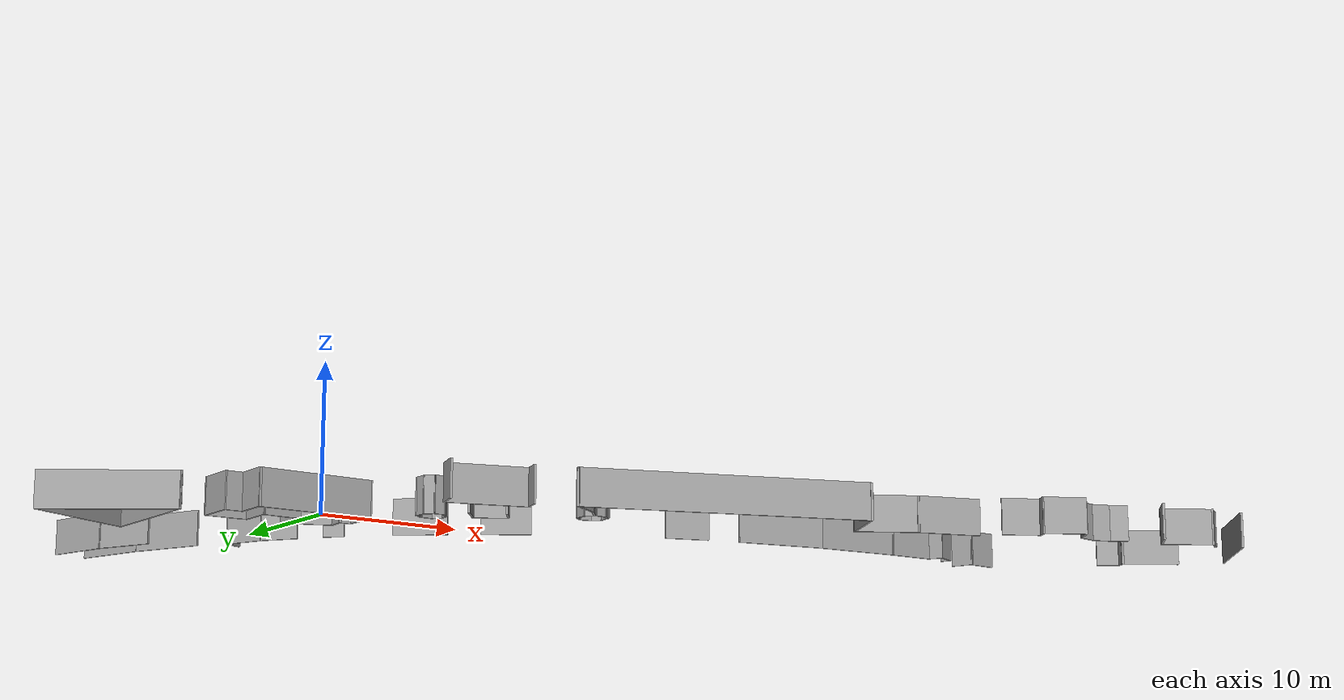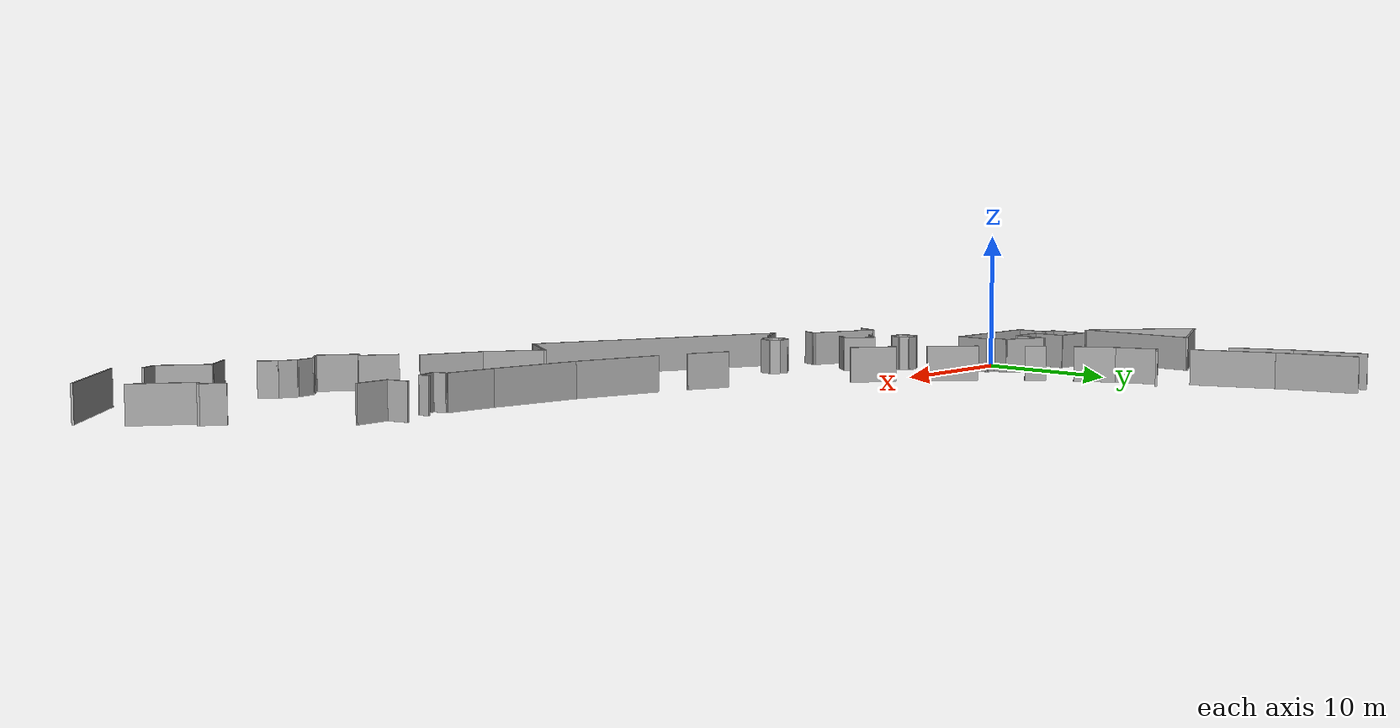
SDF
<?xml version='1.0'?>
<sdf version='1.6'>
  <model name='Area_A'>
    <pose frame=''>23.7273 0.310107 0 0 -0 0</pose>
    <link name='Wall_0'>
      <collision name='Wall_0_Collision'>
        <geometry>
          <box>
            <size>5 0.15 2.5</size>
          </box>
        </geometry>
        <pose frame=''>0 0 1.25 0 -0 0</pose>
      </collision>
      <visual name='Wall_0_Visual'>
        <pose frame=''>0 0 1.25 0 -0 0</pose>
        <geometry>
          <box>
            <size>5 0.15 2.5</size>
          </box>
        </geometry>
        <material>
          <script>
            <uri>file://media/materials/scripts/gazebo.material</uri>
            <name>Gazebo/Grey</name>
          </script>
          <ambient>1 1 1 1</ambient>
        </material>
        <meta>
          <layer>0</layer>
        </meta>
      </visual>
      <pose frame=''>-29.9191 23.954 0 0 -0 -1.309</pose>
    </link>
    <link name='Wall_1'>
      <collision name='Wall_1_Collision'>
        <geometry>
          <box>
            <size>4.48832 0.15 2.5</size>
          </box>
        </geometry>
        <pose frame=''>0 0 1.25 0 -0 0</pose>
      </collision>
      <visual name='Wall_1_Visual'>
        <pose frame=''>0 0 1.25 0 -0 0</pose>
        <geometry>
          <box>
            <size>4.48832 0.15 2.5</size>
          </box>
        </geometry>
        <material>
          <script>
            <uri>file://media/materials/scripts/gazebo.material</uri>
            <name>Gazebo/Grey</name>
          </script>
          <ambient>1 1 1 1</ambient>
        </material>
        <meta>
          <layer>0</layer>
        </meta>
      </visual>
      <pose frame=''>-28.4051 19.6319 0 0 -0 -1.14985</pose>
    </link>
    <link name='Wall_10'>
      <collision name='Wall_10_Collision'>
        <geometry>
          <box>
            <size>3.10013 0.15 2.5</size>
          </box>
        </geometry>
        <pose frame=''>0 0 1.25 0 -0 0</pose>
      </collision>
      <visual name='Wall_10_Visual'>
        <pose frame=''>0 0 1.25 0 -0 0</pose>
        <geometry>
          <box>
            <size>3.10013 0.15 2.5</size>
          </box>
        </geometry>
        <material>
          <script>
            <uri>file://media/materials/scripts/gazebo.material</uri>
            <name>Gazebo/Grey</name>
          </script>
          <ambient>1 1 1 1</ambient>
        </material>
        <meta>
          <layer>0</layer>
        </meta>
      </visual>
      <pose frame=''>-22.4883 13.095 0 0 -0 -1.1869</pose>
    </link>
    <link name='Wall_101'>
      <collision name='Wall_101_Collision'>
        <geometry>
          <box>
            <size>1.68972 0.15 2.5</size>
          </box>
        </geometry>
        <pose frame=''>0 0 1.25 0 -0 0</pose>
      </collision>
      <visual name='Wall_101_Visual'>
        <pose frame=''>0 0 1.25 0 -0 0</pose>
        <geometry>
          <box>
            <size>1.68972 0.15 2.5</size>
          </box>
        </geometry>
        <material>
          <script>
            <uri>file://media/materials/scripts/gazebo.material</uri>
            <name>Gazebo/Grey</name>
          </script>
          <ambient>1 1 1 1</ambient>
        </material>
        <meta>
          <layer>0</layer>
        </meta>
      </visual>
      <pose frame=''>-13.9412 -7.02001 0 0 -0 0.942545</pose>
    </link>
    <link name='Wall_102'>
      <collision name='Wall_102_Collision'>
        <geometry>
          <box>
            <size>2.41757 0.15 2.5</size>
          </box>
        </geometry>
        <pose frame=''>0 0 1.25 0 -0 0</pose>
      </collision>
      <visual name='Wall_102_Visual'>
        <pose frame=''>0 0 1.25 0 -0 0</pose>
        <geometry>
          <box>
            <size>2.41757 0.15 2.5</size>
          </box>
        </geometry>
        <material>
          <script>
            <uri>file://media/materials/scripts/gazebo.material</uri>
            <name>Gazebo/Grey</name>
          </script>
          <ambient>1 1 1 1</ambient>
        </material>
        <meta>
          <layer>0</layer>
        </meta>
      </visual>
      <pose frame=''>-14.4189 -5.77467 0 0 -0 2.56039</pose>
    </link>
    <link name='Wall_103'>
      <collision name='Wall_103_Collision'>
        <geometry>
          <box>
            <size>2.10741 0.15 2.5</size>
          </box>
        </geometry>
        <pose frame=''>0 0 1.25 0 -0 0</pose>
      </collision>
      <visual name='Wall_103_Visual'>
        <pose frame=''>0 0 1.25 0 -0 0</pose>
        <geometry>
          <box>
            <size>2.10741 0.15 2.5</size>
          </box>
        </geometry>
        <material>
          <script>
            <uri>file://media/materials/scripts/gazebo.material</uri>
            <name>Gazebo/Grey</name>
          </script>
          <ambient>1 1 1 1</ambient>
        </material>
        <meta>
          <layer>0</layer>
        </meta>
      </visual>
      <pose frame=''>-16.0039 -5.90954 0 0 -0 -2.25673</pose>
    </link>
    <link name='Wall_106'>
      <collision name='Wall_106_Collision'>
        <geometry>
          <box>
            <size>1.75284 0.15 2.5</size>
          </box>
        </geometry>
        <pose frame=''>0 0 1.25 0 -0 0</pose>
      </collision>
      <visual name='Wall_106_Visual'>
        <pose frame=''>0 0 1.25 0 -0 0</pose>
        <geometry>
          <box>
            <size>1.75284 0.15 2.5</size>
          </box>
        </geometry>
        <material>
          <script>
            <uri>file://media/materials/scripts/gazebo.material</uri>
            <name>Gazebo/Grey</name>
          </script>
          <ambient>1 1 1 1</ambient>
        </material>
        <meta>
          <layer>0</layer>
        </meta>
      </visual>
      <pose frame=''>-20.1333 -9.8347 0 0 -0 1.264</pose>
    </link>
    <link name='Wall_107'>
      <collision name='Wall_107_Collision'>
        <geometry>
          <box>
            <size>5.52924 0.15 2.5</size>
          </box>
        </geometry>
        <pose frame=''>0 0 1.25 0 -0 0</pose>
      </collision>
      <visual name='Wall_107_Visual'>
        <pose frame=''>0 0 1.25 0 -0 0</pose>
        <geometry>
          <box>
            <size>5.52924 0.15 2.5</size>
          </box>
        </geometry>
        <material>
          <script>
            <uri>file://media/materials/scripts/gazebo.material</uri>
            <name>Gazebo/Grey</name>
          </script>
          <ambient>1 1 1 1</ambient>
        </material>
        <meta>
          <layer>0</layer>
        </meta>
      </visual>
      <pose frame=''>-17.3336 -9.92045 0 0 -0 -0.314598</pose>
    </link>
    <link name='Wall_108'>
      <collision name='Wall_108_Collision'>
        <geometry>
          <box>
            <size>1.30402 0.15 2.5</size>
          </box>
        </geometry>
        <pose frame=''>0 0 1.25 0 -0 0</pose>
      </collision>
      <visual name='Wall_108_Visual'>
        <pose frame=''>0 0 1.25 0 -0 0</pose>
        <geometry>
          <box>
            <size>1.30402 0.15 2.5</size>
          </box>
        </geometry>
        <material>
          <script>
            <uri>file://media/materials/scripts/gazebo.material</uri>
            <name>Gazebo/Grey</name>
          </script>
          <ambient>1 1 1 1</ambient>
        </material>
        <meta>
          <layer>0</layer>
        </meta>
      </visual>
      <pose frame=''>-14.9422 -11.2878 0 0 -0 -1.86289</pose>
    </link>
    <link name='Wall_11'>
      <collision name='Wall_11_Collision'>
        <geometry>
          <box>
            <size>2.91557 0.15 2.5</size>
          </box>
        </geometry>
        <pose frame=''>0 0 1.25 0 -0 0</pose>
      </collision>
      <visual name='Wall_11_Visual'>
        <pose frame=''>0 0 1.25 0 -0 0</pose>
        <geometry>
          <box>
            <size>2.91557 0.15 2.5</size>
          </box>
        </geometry>
        <material>
          <script>
            <uri>file://media/materials/scripts/gazebo.material</uri>
            <name>Gazebo/Grey</name>
          </script>
          <ambient>1 1 1 1</ambient>
        </material>
        <meta>
          <layer>0</layer>
        </meta>
      </visual>
      <pose frame=''>-21.1469 10.5798 0 0 -0 -0.978895</pose>
    </link>
    <link name='Wall_111'>
      <collision name='Wall_111_Collision'>
        <geometry>
          <box>
            <size>0.872311 0.15 2.5</size>
          </box>
        </geometry>
        <pose frame=''>0 0 1.25 0 -0 0</pose>
      </collision>
      <visual name='Wall_111_Visual'>
        <pose frame=''>0 0 1.25 0 -0 0</pose>
        <geometry>
          <box>
            <size>0.872311 0.15 2.5</size>
          </box>
        </geometry>
        <material>
          <script>
            <uri>file://media/materials/scripts/gazebo.material</uri>
            <name>Gazebo/Grey</name>
          </script>
          <ambient>1 1 1 1</ambient>
        </material>
        <meta>
          <layer>0</layer>
        </meta>
      </visual>
      <pose frame=''>-18.6942 -4.18244 0 0 -0 -1.52867</pose>
    </link>
    <link name='Wall_112'>
      <collision name='Wall_112_Collision'>
        <geometry>
          <box>
            <size>0.838755 0.15 2.5</size>
          </box>
        </geometry>
        <pose frame=''>0 0 1.25 0 -0 0</pose>
      </collision>
      <visual name='Wall_112_Visual'>
        <pose frame=''>0 0 1.25 0 -0 0</pose>
        <geometry>
          <box>
            <size>0.838755 0.15 2.5</size>
          </box>
        </geometry>
        <material>
          <script>
            <uri>file://media/materials/scripts/gazebo.material</uri>
            <name>Gazebo/Grey</name>
          </script>
          <ambient>1 1 1 1</ambient>
        </material>
        <meta>
          <layer>0</layer>
        </meta>
      </visual>
      <pose frame=''>-18.453 -4.81829 0 0 -0 -0.854781</pose>
    </link>
    <link name='Wall_113'>
      <collision name='Wall_113_Collision'>
        <geometry>
          <box>
            <size>0.864611 0.15 2.5</size>
          </box>
        </geometry>
        <pose frame=''>0 0 1.25 0 -0 0</pose>
      </collision>
      <visual name='Wall_113_Visual'>
        <pose frame=''>0 0 1.25 0 -0 0</pose>
        <geometry>
          <box>
            <size>0.864611 0.15 2.5</size>
          </box>
        </geometry>
        <material>
          <script>
            <uri>file://media/materials/scripts/gazebo.material</uri>
            <name>Gazebo/Grey</name>
          </script>
          <ambient>1 1 1 1</ambient>
        </material>
        <meta>
          <layer>0</layer>
        </meta>
      </visual>
      <pose frame=''>-17.8544 -5.08164 0 0 -0 -0.009899</pose>
    </link>
    <link name='Wall_114'>
      <collision name='Wall_114_Collision'>
        <geometry>
          <box>
            <size>0.924795 0.15 2.5</size>
          </box>
        </geometry>
        <pose frame=''>0 0 1.25 0 -0 0</pose>
      </collision>
      <visual name='Wall_114_Visual'>
        <pose frame=''>0 0 1.25 0 -0 0</pose>
        <geometry>
          <box>
            <size>0.924795 0.15 2.5</size>
          </box>
        </geometry>
        <material>
          <script>
            <uri>file://media/materials/scripts/gazebo.material</uri>
            <name>Gazebo/Grey</name>
          </script>
          <ambient>1 1 1 1</ambient>
        </material>
        <meta>
          <layer>0</layer>
        </meta>
      </visual>
      <pose frame=''>-17.2423 -4.80747 0 0 -0 0.799279</pose>
    </link>
    <link name='Wall_115'>
      <collision name='Wall_115_Collision'>
        <geometry>
          <box>
            <size>0.800089 0.15 2.5</size>
          </box>
        </geometry>
        <pose frame=''>0 0 1.25 0 -0 0</pose>
      </collision>
      <visual name='Wall_115_Visual'>
        <pose frame=''>0 0 1.25 0 -0 0</pose>
        <geometry>
          <box>
            <size>0.800089 0.15 2.5</size>
          </box>
        </geometry>
        <material>
          <script>
            <uri>file://media/materials/scripts/gazebo.material</uri>
            <name>Gazebo/Grey</name>
          </script>
          <ambient>1 1 1 1</ambient>
        </material>
        <meta>
          <layer>0</layer>
        </meta>
      </visual>
      <pose frame=''>-16.9341 -4.22216 0 0 -0 1.45355</pose>
    </link>
    <link name='Wall_116'>
      <collision name='Wall_116_Collision'>
        <geometry>
          <box>
            <size>0.869268 0.15 2.5</size>
          </box>
        </geometry>
        <pose frame=''>0 0 1.25 0 -0 0</pose>
      </collision>
      <visual name='Wall_116_Visual'>
        <pose frame=''>0 0 1.25 0 -0 0</pose>
        <geometry>
          <box>
            <size>0.869268 0.15 2.5</size>
          </box>
        </geometry>
        <material>
          <script>
            <uri>file://media/materials/scripts/gazebo.material</uri>
            <name>Gazebo/Grey</name>
          </script>
          <ambient>1 1 1 1</ambient>
        </material>
        <meta>
          <layer>0</layer>
        </meta>
      </visual>
      <pose frame=''>-17.1162 -3.63014 0 0 -0 2.22941</pose>
    </link>
    <link name='Wall_117'>
      <collision name='Wall_117_Collision'>
        <geometry>
          <box>
            <size>0.933096 0.15 2.5</size>
          </box>
        </geometry>
        <pose frame=''>0 0 1.25 0 -0 0</pose>
      </collision>
      <visual name='Wall_117_Visual'>
        <pose frame=''>0 0 1.25 0 -0 0</pose>
        <geometry>
          <box>
            <size>0.933096 0.15 2.5</size>
          </box>
        </geometry>
        <material>
          <script>
            <uri>file://media/materials/scripts/gazebo.material</uri>
            <name>Gazebo/Grey</name>
          </script>
          <ambient>1 1 1 1</ambient>
        </material>
        <meta>
          <layer>0</layer>
        </meta>
      </visual>
      <pose frame=''>-17.7276 -3.33812 0 0 -0 -3.12216</pose>
    </link>
    <link name='Wall_118'>
      <collision name='Wall_118_Collision'>
        <geometry>
          <box>
            <size>0.896663 0.15 2.5</size>
          </box>
        </geometry>
        <pose frame=''>0 0 1.25 0 -0 0</pose>
      </collision>
      <visual name='Wall_118_Visual'>
        <pose frame=''>0 0 1.25 0 -0 0</pose>
        <geometry>
          <box>
            <size>0.896663 0.15 2.5</size>
          </box>
        </geometry>
        <material>
          <script>
            <uri>file://media/materials/scripts/gazebo.material</uri>
            <name>Gazebo/Grey</name>
          </script>
          <ambient>1 1 1 1</ambient>
        </material>
        <meta>
          <layer>0</layer>
        </meta>
      </visual>
      <pose frame=''>-18.4255 -3.54344 0 0 -0 -2.53468</pose>
    </link>
    <link name='Wall_14'>
      <collision name='Wall_14_Collision'>
        <geometry>
          <box>
            <size>7.94834 0.15 2.5</size>
          </box>
        </geometry>
        <pose frame=''>0 0 1.25 0 -0 0</pose>
      </collision>
      <visual name='Wall_14_Visual'>
        <pose frame=''>0 0 1.25 0 -0 0</pose>
        <geometry>
          <box>
            <size>7.94834 0.15 2.5</size>
          </box>
        </geometry>
        <material>
          <script>
            <uri>file://media/materials/scripts/gazebo.material</uri>
            <name>Gazebo/Grey</name>
          </script>
          <ambient>1 1 1 1</ambient>
        </material>
        <meta>
          <layer>0</layer>
        </meta>
      </visual>
      <pose frame=''>-35.4379 10.1479 0 0 -0 0.443718</pose>
    </link>
    <link name='Wall_15'>
      <collision name='Wall_15_Collision'>
        <geometry>
          <box>
            <size>8.94143 0.15 2.5</size>
          </box>
        </geometry>
        <pose frame=''>0 0 1.25 0 -0 0</pose>
      </collision>
      <visual name='Wall_15_Visual'>
        <pose frame=''>0 0 1.25 0 -0 0</pose>
        <geometry>
          <box>
            <size>8.94143 0.15 2.5</size>
          </box>
        </geometry>
        <material>
          <script>
            <uri>file://media/materials/scripts/gazebo.material</uri>
            <name>Gazebo/Grey</name>
          </script>
          <ambient>1 1 1 1</ambient>
        </material>
        <meta>
          <layer>0</layer>
        </meta>
      </visual>
      <pose frame=''>-31.8638 7.42669 0 0 -0 -1.55488</pose>
    </link>
    <link name='Wall_16'>
      <collision name='Wall_16_Collision'>
        <geometry>
          <box>
            <size>9.21729 0.15 2.5</size>
          </box>
        </geometry>
        <pose frame=''>0 0 1.25 0 -0 0</pose>
      </collision>
      <visual name='Wall_16_Visual'>
        <pose frame=''>0 0 1.25 0 -0 0</pose>
        <geometry>
          <box>
            <size>9.21729 0.15 2.5</size>
          </box>
        </geometry>
        <material>
          <script>
            <uri>file://media/materials/scripts/gazebo.material</uri>
            <name>Gazebo/Grey</name>
          </script>
          <ambient>1 1 1 1</ambient>
        </material>
        <meta>
          <layer>0</layer>
        </meta>
      </visual>
      <pose frame=''>-35.4325 5.71241 0 0 -0 2.50889</pose>
    </link>
    <link name='Wall_19'>
      <collision name='Wall_19_Collision'>
        <geometry>
          <box>
            <size>2.88992 0.15 2.5</size>
          </box>
        </geometry>
        <pose frame=''>0 0 1.25 0 -0 0</pose>
      </collision>
      <visual name='Wall_19_Visual'>
        <pose frame=''>0 0 1.25 0 -0 0</pose>
        <geometry>
          <box>
            <size>2.88992 0.15 2.5</size>
          </box>
        </geometry>
        <material>
          <script>
            <uri>file://media/materials/scripts/gazebo.material</uri>
            <name>Gazebo/Grey</name>
          </script>
          <ambient>1 1 1 1</ambient>
        </material>
        <meta>
          <layer>0</layer>
        </meta>
      </visual>
      <pose frame=''>-29.4798 2.83648 0 0 -0 -1.5708</pose>
    </link>
    <link name='Wall_20'>
      <collision name='Wall_20_Collision'>
        <geometry>
          <box>
            <size>1.29998 0.15 2.5</size>
          </box>
        </geometry>
        <pose frame=''>0 0 1.25 0 -0 0</pose>
      </collision>
      <visual name='Wall_20_Visual'>
        <pose frame=''>0 0 1.25 0 -0 0</pose>
        <geometry>
          <box>
            <size>1.29998 0.15 2.5</size>
          </box>
        </geometry>
        <material>
          <script>
            <uri>file://media/materials/scripts/gazebo.material</uri>
            <name>Gazebo/Grey</name>
          </script>
          <ambient>1 1 1 1</ambient>
        </material>
        <meta>
          <layer>0</layer>
        </meta>
      </visual>
      <pose frame=''>-28.8874 1.46409 0 0 -0 -0.004226</pose>
    </link>
    <link name='Wall_21'>
      <collision name='Wall_21_Collision'>
        <geometry>
          <box>
            <size>2.51235 0.15 2.5</size>
          </box>
        </geometry>
        <pose frame=''>0 0 1.25 0 -0 0</pose>
      </collision>
      <visual name='Wall_21_Visual'>
        <pose frame=''>0 0 1.25 0 -0 0</pose>
        <geometry>
          <box>
            <size>2.51235 0.15 2.5</size>
          </box>
        </geometry>
        <material>
          <script>
            <uri>file://media/materials/scripts/gazebo.material</uri>
            <name>Gazebo/Grey</name>
          </script>
          <ambient>1 1 1 1</ambient>
        </material>
        <meta>
          <layer>0</layer>
        </meta>
      </visual>
      <pose frame=''>-28.2949 0.280487 0 0 -0 -1.5708</pose>
    </link>
    <link name='Wall_22'>
      <collision name='Wall_22_Collision'>
        <geometry>
          <box>
            <size>7.93526 0.15 2.5</size>
          </box>
        </geometry>
        <pose frame=''>0 0 1.25 0 -0 0</pose>
      </collision>
      <visual name='Wall_22_Visual'>
        <pose frame=''>0 0 1.25 0 -0 0</pose>
        <geometry>
          <box>
            <size>7.93526 0.15 2.5</size>
          </box>
        </geometry>
        <material>
          <script>
            <uri>file://media/materials/scripts/gazebo.material</uri>
            <name>Gazebo/Grey</name>
          </script>
          <ambient>1 1 1 1</ambient>
        </material>
        <meta>
          <layer>0</layer>
        </meta>
      </visual>
      <pose frame=''>-24.4023 -0.900688 0 0 -0 -0.004493</pose>
    </link>
    <link name='Wall_23'>
      <collision name='Wall_23_Collision'>
        <geometry>
          <box>
            <size>2.79105 0.15 2.5</size>
          </box>
        </geometry>
        <pose frame=''>0 0 1.25 0 -0 0</pose>
      </collision>
      <visual name='Wall_23_Visual'>
        <pose frame=''>0 0 1.25 0 -0 0</pose>
        <geometry>
          <box>
            <size>2.79105 0.15 2.5</size>
          </box>
        </geometry>
        <material>
          <script>
            <uri>file://media/materials/scripts/gazebo.material</uri>
            <name>Gazebo/Grey</name>
          </script>
          <ambient>1 1 1 1</ambient>
        </material>
        <meta>
          <layer>0</layer>
        </meta>
      </visual>
      <pose frame=''>-20.466 0.401881 0 0 -0 1.55093</pose>
    </link>
    <link name='Wall_24'>
      <collision name='Wall_24_Collision'>
        <geometry>
          <box>
            <size>0.970905 0.15 2.5</size>
          </box>
        </geometry>
        <pose frame=''>0 0 1.25 0 -0 0</pose>
      </collision>
      <visual name='Wall_24_Visual'>
        <pose frame=''>0 0 1.25 0 -0 0</pose>
        <geometry>
          <box>
            <size>0.970905 0.15 2.5</size>
          </box>
        </geometry>
        <material>
          <script>
            <uri>file://media/materials/scripts/gazebo.material</uri>
            <name>Gazebo/Grey</name>
          </script>
          <ambient>1 1 1 1</ambient>
        </material>
        <meta>
          <layer>0</layer>
        </meta>
      </visual>
      <pose frame=''>-20.8324 1.73943 0 0 -0 3.09897</pose>
    </link>
    <link name='Wall_25'>
      <collision name='Wall_25_Collision'>
        <geometry>
          <box>
            <size>1.31985 0.15 2.5</size>
          </box>
        </geometry>
        <pose frame=''>0 0 1.25 0 -0 0</pose>
      </collision>
      <visual name='Wall_25_Visual'>
        <pose frame=''>0 0 1.25 0 -0 0</pose>
        <geometry>
          <box>
            <size>1.31985 0.15 2.5</size>
          </box>
        </geometry>
        <material>
          <script>
            <uri>file://media/materials/scripts/gazebo.material</uri>
            <name>Gazebo/Grey</name>
          </script>
          <ambient>1 1 1 1</ambient>
        </material>
        <meta>
          <layer>0</layer>
        </meta>
      </visual>
      <pose frame=''>-21.205 2.32316 0 0 -0 1.5068</pose>
    </link>
    <link name='Wall_27'>
      <collision name='Wall_27_Collision'>
        <geometry>
          <box>
            <size>2.55097 0.15 2.5</size>
          </box>
        </geometry>
        <pose frame=''>0 0 1.25 0 -0 0</pose>
      </collision>
      <visual name='Wall_27_Visual'>
        <pose frame=''>0 0 1.25 0 -0 0</pose>
        <geometry>
          <box>
            <size>2.55097 0.15 2.5</size>
          </box>
        </geometry>
        <material>
          <script>
            <uri>file://media/materials/scripts/gazebo.material</uri>
            <name>Gazebo/Grey</name>
          </script>
          <ambient>1 1 1 1</ambient>
        </material>
        <meta>
          <layer>0</layer>
        </meta>
      </visual>
      <pose frame=''>-24.165 2.96193 0 0 -0 -1.54894</pose>
    </link>
    <link name='Wall_28'>
      <collision name='Wall_28_Collision'>
        <geometry>
          <box>
            <size>2.68572 0.15 2.5</size>
          </box>
        </geometry>
        <pose frame=''>0 0 1.25 0 -0 0</pose>
      </collision>
      <visual name='Wall_28_Visual'>
        <pose frame=''>0 0 1.25 0 -0 0</pose>
        <geometry>
          <box>
            <size>2.68572 0.15 2.5</size>
          </box>
        </geometry>
        <material>
          <script>
            <uri>file://media/materials/scripts/gazebo.material</uri>
            <name>Gazebo/Grey</name>
          </script>
          <ambient>1 1 1 1</ambient>
        </material>
        <meta>
          <layer>0</layer>
        </meta>
      </visual>
      <pose frame=''>-25.3889 1.7355 0 0 -0 -3.1209</pose>
    </link>
    <link name='Wall_29'>
      <collision name='Wall_29_Collision'>
        <geometry>
          <box>
            <size>2.56275 0.15 2.5</size>
          </box>
        </geometry>
        <pose frame=''>0 0 1.25 0 -0 0</pose>
      </collision>
      <visual name='Wall_29_Visual'>
        <pose frame=''>0 0 1.25 0 -0 0</pose>
        <geometry>
          <box>
            <size>2.56275 0.15 2.5</size>
          </box>
        </geometry>
        <material>
          <script>
            <uri>file://media/materials/scripts/gazebo.material</uri>
            <name>Gazebo/Grey</name>
          </script>
          <ambient>1 1 1 1</ambient>
        </material>
        <meta>
          <layer>0</layer>
        </meta>
      </visual>
      <pose frame=''>-26.6739 2.91563 0 0 -0 1.5708</pose>
    </link>
    <link name='Wall_30'>
      <collision name='Wall_30_Collision'>
        <geometry>
          <box>
            <size>2.94414 0.15 2.5</size>
          </box>
        </geometry>
        <pose frame=''>0 0 1.25 0 -0 0</pose>
      </collision>
      <visual name='Wall_30_Visual'>
        <pose frame=''>0 0 1.25 0 -0 0</pose>
        <geometry>
          <box>
            <size>2.94414 0.15 2.5</size>
          </box>
        </geometry>
        <material>
          <script>
            <uri>file://media/materials/scripts/gazebo.material</uri>
            <name>Gazebo/Grey</name>
          </script>
          <ambient>1 1 1 1</ambient>
        </material>
        <meta>
          <layer>0</layer>
        </meta>
      </visual>
      <pose frame=''>-28.0868 4.19177 0 0 -0 3.09164</pose>
    </link>
    <link name='Wall_33'>
      <collision name='Wall_33_Collision'>
        <geometry>
          <box>
            <size>3.40767 0.15 2.5</size>
          </box>
        </geometry>
        <pose frame=''>0 0 1.25 0 -0 0</pose>
      </collision>
      <visual name='Wall_33_Visual'>
        <pose frame=''>0 0 1.25 0 -0 0</pose>
        <geometry>
          <box>
            <size>3.40767 0.15 2.5</size>
          </box>
        </geometry>
        <material>
          <script>
            <uri>file://media/materials/scripts/gazebo.material</uri>
            <name>Gazebo/Grey</name>
          </script>
          <ambient>1 1 1 1</ambient>
        </material>
        <meta>
          <layer>0</layer>
        </meta>
      </visual>
      <pose frame=''>-22.6707 3.53451 0 0 -0 2.74604</pose>
    </link>
    <link name='Wall_35'>
      <collision name='Wall_35_Collision'>
        <geometry>
          <box>
            <size>1.50362 0.15 2.5</size>
          </box>
        </geometry>
        <pose frame=''>0 0 1.25 0 -0 0</pose>
      </collision>
      <visual name='Wall_35_Visual'>
        <pose frame=''>0 0 1.25 0 -0 0</pose>
        <geometry>
          <box>
            <size>1.50362 0.15 2.5</size>
          </box>
        </geometry>
        <material>
          <script>
            <uri>file://media/materials/scripts/gazebo.material</uri>
            <name>Gazebo/Grey</name>
          </script>
          <ambient>1 1 1 1</ambient>
        </material>
        <meta>
          <layer>0</layer>
        </meta>
      </visual>
      <pose frame=''>-18.7066 7.20967 0 0 -0 -0.858555</pose>
    </link>
    <link name='Wall_38'>
      <collision name='Wall_38_Collision'>
        <geometry>
          <box>
            <size>3.74437 0.15 2.5</size>
          </box>
        </geometry>
        <pose frame=''>0 0 1.25 0 -0 0</pose>
      </collision>
      <visual name='Wall_38_Visual'>
        <pose frame=''>0 0 1.25 0 -0 0</pose>
        <geometry>
          <box>
            <size>3.74437 0.15 2.5</size>
          </box>
        </geometry>
        <material>
          <script>
            <uri>file://media/materials/scripts/gazebo.material</uri>
            <name>Gazebo/Grey</name>
          </script>
          <ambient>1 1 1 1</ambient>
        </material>
        <meta>
          <layer>0</layer>
        </meta>
      </visual>
      <pose frame=''>-14.484 2.97831 0 0 -0 -0.713079</pose>
    </link>
    <link name='Wall_4'>
      <collision name='Wall_4_Collision'>
        <geometry>
          <box>
            <size>5.60766 0.15 2.5</size>
          </box>
        </geometry>
        <pose frame=''>0 0 1.25 0 -0 0</pose>
      </collision>
      <visual name='Wall_4_Visual'>
        <pose frame=''>0 0 1.25 0 -0 0</pose>
        <geometry>
          <box>
            <size>5.60766 0.15 2.5</size>
          </box>
        </geometry>
        <material>
          <script>
            <uri>file://media/materials/scripts/gazebo.material</uri>
            <name>Gazebo/Grey</name>
          </script>
          <ambient>1 1 1 1</ambient>
        </material>
        <meta>
          <layer>0</layer>
        </meta>
      </visual>
      <pose frame=''>-27.4705 24.1027 0 0 -0 -1.27899</pose>
    </link>
    <link name='Wall_41'>
      <collision name='Wall_41_Collision'>
        <geometry>
          <box>
            <size>3.39608 0.15 2.5</size>
          </box>
        </geometry>
        <pose frame=''>0 0 1.25 0 -0 0</pose>
      </collision>
      <visual name='Wall_41_Visual'>
        <pose frame=''>0 0 1.25 0 -0 0</pose>
        <geometry>
          <box>
            <size>3.39608 0.15 2.5</size>
          </box>
        </geometry>
        <material>
          <script>
            <uri>file://media/materials/scripts/gazebo.material</uri>
            <name>Gazebo/Grey</name>
          </script>
          <ambient>1 1 1 1</ambient>
        </material>
        <meta>
          <layer>0</layer>
        </meta>
      </visual>
      <pose frame=''>-9.95021 -0.636281 0 0 -0 -0.593313</pose>
    </link>
    <link name='Wall_47'>
      <collision name='Wall_47_Collision'>
        <geometry>
          <box>
            <size>3.10016 0.15 2.5</size>
          </box>
        </geometry>
        <pose frame=''>0 0 1.25 0 -0 0</pose>
      </collision>
      <visual name='Wall_47_Visual'>
        <pose frame=''>0 0 1.25 0 -0 0</pose>
        <geometry>
          <box>
            <size>3.10016 0.15 2.5</size>
          </box>
        </geometry>
        <material>
          <script>
            <uri>file://media/materials/scripts/gazebo.material</uri>
            <name>Gazebo/Grey</name>
          </script>
          <ambient>1 1 1 1</ambient>
        </material>
        <meta>
          <layer>0</layer>
        </meta>
      </visual>
      <pose frame=''>0.959403 -6.40281 0 0 -0 -0.333236</pose>
    </link>
    <link name='Wall_5'>
      <collision name='Wall_5_Collision'>
        <geometry>
          <box>
            <size>5.7209 0.15 2.5</size>
          </box>
        </geometry>
        <pose frame=''>0 0 1.25 0 -0 0</pose>
      </collision>
      <visual name='Wall_5_Visual'>
        <pose frame=''>0 0 1.25 0 -0 0</pose>
        <geometry>
          <box>
            <size>5.7209 0.15 2.5</size>
          </box>
        </geometry>
        <material>
          <script>
            <uri>file://media/materials/scripts/gazebo.material</uri>
            <name>Gazebo/Grey</name>
          </script>
          <ambient>1 1 1 1</ambient>
        </material>
        <meta>
          <layer>0</layer>
        </meta>
      </visual>
      <pose frame=''>-25.5555 18.9356 0 0 -0 -1.15996</pose>
    </link>
    <link name='Wall_50'>
      <collision name='Wall_50_Collision'>
        <geometry>
          <box>
            <size>6.47889 0.15 2.5</size>
          </box>
        </geometry>
        <pose frame=''>0 0 1.25 0 -0 0</pose>
      </collision>
      <visual name='Wall_50_Visual'>
        <pose frame=''>0 0 1.25 0 -0 0</pose>
        <geometry>
          <box>
            <size>6.47889 0.15 2.5</size>
          </box>
        </geometry>
        <material>
          <script>
            <uri>file://media/materials/scripts/gazebo.material</uri>
            <name>Gazebo/Grey</name>
          </script>
          <ambient>1 1 1 1</ambient>
        </material>
        <meta>
          <layer>0</layer>
        </meta>
      </visual>
      <pose frame=''>7.76422 -8.2042 0 0 -0 -0.214897</pose>
    </link>
    <link name='Wall_51'>
      <collision name='Wall_51_Collision'>
        <geometry>
          <box>
            <size>6.35232 0.15 2.5</size>
          </box>
        </geometry>
        <pose frame=''>0 0 1.25 0 -0 0</pose>
      </collision>
      <visual name='Wall_51_Visual'>
        <pose frame=''>0 0 1.25 0 -0 0</pose>
        <geometry>
          <box>
            <size>6.35232 0.15 2.5</size>
          </box>
        </geometry>
        <material>
          <script>
            <uri>file://media/materials/scripts/gazebo.material</uri>
            <name>Gazebo/Grey</name>
          </script>
          <ambient>1 1 1 1</ambient>
        </material>
        <meta>
          <layer>0</layer>
        </meta>
      </visual>
      <pose frame=''>13.9419 -9.16759 0 0 -0 -0.098858</pose>
    </link>
    <link name='Wall_52'>
      <collision name='Wall_52_Collision'>
        <geometry>
          <box>
            <size>3.62666 0.15 2.5</size>
          </box>
        </geometry>
        <pose frame=''>0 0 1.25 0 -0 0</pose>
      </collision>
      <visual name='Wall_52_Visual'>
        <pose frame=''>0 0 1.25 0 -0 0</pose>
        <geometry>
          <box>
            <size>3.62666 0.15 2.5</size>
          </box>
        </geometry>
        <material>
          <script>
            <uri>file://media/materials/scripts/gazebo.material</uri>
            <name>Gazebo/Grey</name>
          </script>
          <ambient>1 1 1 1</ambient>
        </material>
        <meta>
          <layer>0</layer>
        </meta>
      </visual>
      <pose frame=''>18.7827 -9.53488 0 0 -0 -0.035222</pose>
    </link>
    <link name='Wall_53'>
      <collision name='Wall_53_Collision'>
        <geometry>
          <box>
            <size>1.15385 0.15 2.5</size>
          </box>
        </geometry>
        <pose frame=''>0 0 1.25 0 -0 0</pose>
      </collision>
      <visual name='Wall_53_Visual'>
        <pose frame=''>0 0 1.25 0 -0 0</pose>
        <geometry>
          <box>
            <size>1.15385 0.15 2.5</size>
          </box>
        </geometry>
        <material>
          <script>
            <uri>file://media/materials/scripts/gazebo.material</uri>
            <name>Gazebo/Grey</name>
          </script>
          <ambient>1 1 1 1</ambient>
        </material>
        <meta>
          <layer>0</layer>
        </meta>
      </visual>
      <pose frame=''>20.6824 -10.0647 0 0 -0 -1.20408</pose>
    </link>
    <link name='Wall_54'>
      <collision name='Wall_54_Collision'>
        <geometry>
          <box>
            <size>1.62983 0.15 2.5</size>
          </box>
        </geometry>
        <pose frame=''>0 0 1.25 0 -0 0</pose>
      </collision>
      <visual name='Wall_54_Visual'>
        <pose frame=''>0 0 1.25 0 -0 0</pose>
        <geometry>
          <box>
            <size>1.62983 0.15 2.5</size>
          </box>
        </geometry>
        <material>
          <script>
            <uri>file://media/materials/scripts/gazebo.material</uri>
            <name>Gazebo/Grey</name>
          </script>
          <ambient>1 1 1 1</ambient>
        </material>
        <meta>
          <layer>0</layer>
        </meta>
      </visual>
      <pose frame=''>21.5634 -10.2501 0 0 -0 0.392669</pose>
    </link>
    <link name='Wall_55'>
      <collision name='Wall_55_Collision'>
        <geometry>
          <box>
            <size>0.811727 0.15 2.5</size>
          </box>
        </geometry>
        <pose frame=''>0 0 1.25 0 -0 0</pose>
      </collision>
      <visual name='Wall_55_Visual'>
        <pose frame=''>0 0 1.25 0 -0 0</pose>
        <geometry>
          <box>
            <size>0.811727 0.15 2.5</size>
          </box>
        </geometry>
        <material>
          <script>
            <uri>file://media/materials/scripts/gazebo.material</uri>
            <name>Gazebo/Grey</name>
          </script>
          <ambient>1 1 1 1</ambient>
        </material>
        <meta>
          <layer>0</layer>
        </meta>
      </visual>
      <pose frame=''>22.1719 -9.62723 0 0 -0 1.79993</pose>
    </link>
    <link name='Wall_58'>
      <collision name='Wall_58_Collision'>
        <geometry>
          <box>
            <size>1.66654 0.15 2.5</size>
          </box>
        </geometry>
        <pose frame=''>0 0 1.25 0 -0 0</pose>
      </collision>
      <visual name='Wall_58_Visual'>
        <pose frame=''>0 0 1.25 0 -0 0</pose>
        <geometry>
          <box>
            <size>1.66654 0.15 2.5</size>
          </box>
        </geometry>
        <material>
          <script>
            <uri>file://media/materials/scripts/gazebo.material</uri>
            <name>Gazebo/Grey</name>
          </script>
          <ambient>1 1 1 1</ambient>
        </material>
        <meta>
          <layer>0</layer>
        </meta>
      </visual>
      <pose frame=''>24.7301 -8.70862 0 0 -0 -1.27117</pose>
    </link>
    <link name='Wall_59'>
      <collision name='Wall_59_Collision'>
        <geometry>
          <box>
            <size>2.35289 0.15 2.5</size>
          </box>
        </geometry>
        <pose frame=''>0 0 1.25 0 -0 0</pose>
      </collision>
      <visual name='Wall_59_Visual'>
        <pose frame=''>0 0 1.25 0 -0 0</pose>
        <geometry>
          <box>
            <size>2.35289 0.15 2.5</size>
          </box>
        </geometry>
        <material>
          <script>
            <uri>file://media/materials/scripts/gazebo.material</uri>
            <name>Gazebo/Grey</name>
          </script>
          <ambient>1 1 1 1</ambient>
        </material>
        <meta>
          <layer>0</layer>
        </meta>
      </visual>
      <pose frame=''>26.0522 -9.33232 0 0 -0 0.075697</pose>
    </link>
    <link name='Wall_62'>
      <collision name='Wall_62_Collision'>
        <geometry>
          <box>
            <size>1.71921 0.15 2.5</size>
          </box>
        </geometry>
        <pose frame=''>0 0 1.25 0 -0 0</pose>
      </collision>
      <visual name='Wall_62_Visual'>
        <pose frame=''>0 0 1.25 0 -0 0</pose>
        <geometry>
          <box>
            <size>1.71921 0.15 2.5</size>
          </box>
        </geometry>
        <material>
          <script>
            <uri>file://media/materials/scripts/gazebo.material</uri>
            <name>Gazebo/Grey</name>
          </script>
          <ambient>1 1 1 1</ambient>
        </material>
        <meta>
          <layer>0</layer>
        </meta>
      </visual>
      <pose frame=''>33.2827 -15.2088 0 0 -0 -0.611257</pose>
    </link>
    <link name='Wall_63'>
      <collision name='Wall_63_Collision'>
        <geometry>
          <box>
            <size>0.890683 0.15 2.5</size>
          </box>
        </geometry>
        <pose frame=''>0 0 1.25 0 -0 0</pose>
      </collision>
      <visual name='Wall_63_Visual'>
        <pose frame=''>0 0 1.25 0 -0 0</pose>
        <geometry>
          <box>
            <size>0.890683 0.15 2.5</size>
          </box>
        </geometry>
        <material>
          <script>
            <uri>file://media/materials/scripts/gazebo.material</uri>
            <name>Gazebo/Grey</name>
          </script>
          <ambient>1 1 1 1</ambient>
        </material>
        <meta>
          <layer>0</layer>
        </meta>
      </visual>
      <pose frame=''>33.7731 -15.9869 0 0 -0 -2.05463</pose>
    </link>
    <link name='Wall_64'>
      <collision name='Wall_64_Collision'>
        <geometry>
          <box>
            <size>4.2431 0.15 2.5</size>
          </box>
        </geometry>
        <pose frame=''>0 0 1.25 0 -0 0</pose>
      </collision>
      <visual name='Wall_64_Visual'>
        <pose frame=''>0 0 1.25 0 -0 0</pose>
        <geometry>
          <box>
            <size>4.2431 0.15 2.5</size>
          </box>
        </geometry>
        <material>
          <script>
            <uri>file://media/materials/scripts/gazebo.material</uri>
            <name>Gazebo/Grey</name>
          </script>
          <ambient>1 1 1 1</ambient>
        </material>
        <meta>
          <layer>0</layer>
        </meta>
      </visual>
      <pose frame=''>35.2981 -17.4382 0 0 -0 -0.592885</pose>
    </link>
    <link name='Wall_67'>
      <collision name='Wall_67_Collision'>
        <geometry>
          <box>
            <size>7.5384 0.15 2.5</size>
          </box>
        </geometry>
        <pose frame=''>0 0 1.25 0 -0 0</pose>
      </collision>
      <visual name='Wall_67_Visual'>
        <pose frame=''>0 0 1.25 0 -0 0</pose>
        <geometry>
          <box>
            <size>7.5384 0.15 2.5</size>
          </box>
        </geometry>
        <material>
          <script>
            <uri>file://media/materials/scripts/gazebo.material</uri>
            <name>Gazebo/Grey</name>
          </script>
          <ambient>1 1 1 1</ambient>
        </material>
        <meta>
          <layer>0</layer>
        </meta>
      </visual>
      <pose frame=''>36.6572 -23.9216 0 0 -0 -2.28881</pose>
    </link>
    <link name='Wall_71'>
      <collision name='Wall_71_Collision'>
        <geometry>
          <box>
            <size>2.5 0.15 2.5</size>
          </box>
        </geometry>
        <pose frame=''>0 0 1.25 0 -0 0</pose>
      </collision>
      <visual name='Wall_71_Visual'>
        <pose frame=''>0 0 1.25 0 -0 0</pose>
        <geometry>
          <box>
            <size>2.5 0.15 2.5</size>
          </box>
        </geometry>
        <material>
          <script>
            <uri>file://media/materials/scripts/gazebo.material</uri>
            <name>Gazebo/Grey</name>
          </script>
          <ambient>1 1 1 1</ambient>
        </material>
        <meta>
          <layer>0</layer>
        </meta>
      </visual>
      <pose frame=''>27.7129 -25.1418 0 0 -0 0.785398</pose>
    </link>
    <link name='Wall_72'>
      <collision name='Wall_72_Collision'>
        <geometry>
          <box>
            <size>3.72979 0.15 2.5</size>
          </box>
        </geometry>
        <pose frame=''>0 0 1.25 0 -0 0</pose>
      </collision>
      <visual name='Wall_72_Visual'>
        <pose frame=''>0 0 1.25 0 -0 0</pose>
        <geometry>
          <box>
            <size>3.72979 0.15 2.5</size>
          </box>
        </geometry>
        <material>
          <script>
            <uri>file://media/materials/scripts/gazebo.material</uri>
            <name>Gazebo/Grey</name>
          </script>
          <ambient>1 1 1 1</ambient>
        </material>
        <meta>
          <layer>0</layer>
        </meta>
      </visual>
      <pose frame=''>30.012 -25.3347 0 0 -0 -0.608848</pose>
    </link>
    <link name='Wall_73'>
      <collision name='Wall_73_Collision'>
        <geometry>
          <box>
            <size>1.39297 0.15 2.5</size>
          </box>
        </geometry>
        <pose frame=''>0 0 1.25 0 -0 0</pose>
      </collision>
      <visual name='Wall_73_Visual'>
        <pose frame=''>0 0 1.25 0 -0 0</pose>
        <geometry>
          <box>
            <size>1.39297 0.15 2.5</size>
          </box>
        </geometry>
        <material>
          <script>
            <uri>file://media/materials/scripts/gazebo.material</uri>
            <name>Gazebo/Grey</name>
          </script>
          <ambient>1 1 1 1</ambient>
        </material>
        <meta>
          <layer>0</layer>
        </meta>
      </visual>
      <pose frame=''>32.005 -26.056 0 0 -0 0.565359</pose>
    </link>
    <link name='Wall_76'>
      <collision name='Wall_76_Collision'>
        <geometry>
          <box>
            <size>2.75 0.15 2.5</size>
          </box>
        </geometry>
        <pose frame=''>0 0 1.25 0 -0 0</pose>
      </collision>
      <visual name='Wall_76_Visual'>
        <pose frame=''>0 0 1.25 0 -0 0</pose>
        <geometry>
          <box>
            <size>2.75 0.15 2.5</size>
          </box>
        </geometry>
        <material>
          <script>
            <uri>file://media/materials/scripts/gazebo.material</uri>
            <name>Gazebo/Grey</name>
          </script>
          <ambient>1 1 1 1</ambient>
        </material>
        <meta>
          <layer>0</layer>
        </meta>
      </visual>
      <pose frame=''>17.8213 -21.3917 0 0 -0 -0.523599</pose>
    </link>
    <link name='Wall_77'>
      <collision name='Wall_77_Collision'>
        <geometry>
          <box>
            <size>1 0.15 2.5</size>
          </box>
        </geometry>
        <pose frame=''>0 0 1.25 0 -0 0</pose>
      </collision>
      <visual name='Wall_77_Visual'>
        <pose frame=''>0 0 1.25 0 -0 0</pose>
        <geometry>
          <box>
            <size>1 0.15 2.5</size>
          </box>
        </geometry>
        <material>
          <script>
            <uri>file://media/materials/scripts/gazebo.material</uri>
            <name>Gazebo/Grey</name>
          </script>
          <ambient>1 1 1 1</ambient>
        </material>
        <meta>
          <layer>0</layer>
        </meta>
      </visual>
      <pose frame=''>18.7346 -22.4098 0 0 -0 -2.0944</pose>
    </link>
    <link name='Wall_78'>
      <collision name='Wall_78_Collision'>
        <geometry>
          <box>
            <size>3.00492 0.15 2.5</size>
          </box>
        </geometry>
        <pose frame=''>0 0 1.25 0 -0 0</pose>
      </collision>
      <visual name='Wall_78_Visual'>
        <pose frame=''>0 0 1.25 0 -0 0</pose>
        <geometry>
          <box>
            <size>3.00492 0.15 2.5</size>
          </box>
        </geometry>
        <material>
          <script>
            <uri>file://media/materials/scripts/gazebo.material</uri>
            <name>Gazebo/Grey</name>
          </script>
          <ambient>1 1 1 1</ambient>
        </material>
        <meta>
          <layer>0</layer>
        </meta>
      </visual>
      <pose frame=''>19.7409 -23.521 0 0 -0 -0.547517</pose>
    </link>
    <link name='Wall_79'>
      <collision name='Wall_79_Collision'>
        <geometry>
          <box>
            <size>1.83904 0.15 2.5</size>
          </box>
        </geometry>
        <pose frame=''>0 0 1.25 0 -0 0</pose>
      </collision>
      <visual name='Wall_79_Visual'>
        <pose frame=''>0 0 1.25 0 -0 0</pose>
        <geometry>
          <box>
            <size>1.83904 0.15 2.5</size>
          </box>
        </geometry>
        <material>
          <script>
            <uri>file://media/materials/scripts/gazebo.material</uri>
            <name>Gazebo/Grey</name>
          </script>
          <ambient>1 1 1 1</ambient>
        </material>
        <meta>
          <layer>0</layer>
        </meta>
      </visual>
      <pose frame=''>21.4961 -23.5877 0 0 -0 0.928723</pose>
    </link>
    <link name='Wall_80'>
      <collision name='Wall_80_Collision'>
        <geometry>
          <box>
            <size>1.44093 0.15 2.5</size>
          </box>
        </geometry>
        <pose frame=''>0 0 1.25 0 -0 0</pose>
      </collision>
      <visual name='Wall_80_Visual'>
        <pose frame=''>0 0 1.25 0 -0 0</pose>
        <geometry>
          <box>
            <size>1.44093 0.15 2.5</size>
          </box>
        </geometry>
        <material>
          <script>
            <uri>file://media/materials/scripts/gazebo.material</uri>
            <name>Gazebo/Grey</name>
          </script>
          <ambient>1 1 1 1</ambient>
        </material>
        <meta>
          <layer>0</layer>
        </meta>
      </visual>
      <pose frame=''>22.6369 -22.8267 0 0 -0 0.179571</pose>
    </link>
    <link name='Wall_81'>
      <collision name='Wall_81_Collision'>
        <geometry>
          <box>
            <size>1.42142 0.15 2.5</size>
          </box>
        </geometry>
        <pose frame=''>0 0 1.25 0 -0 0</pose>
      </collision>
      <visual name='Wall_81_Visual'>
        <pose frame=''>0 0 1.25 0 -0 0</pose>
        <geometry>
          <box>
            <size>1.42142 0.15 2.5</size>
          </box>
        </geometry>
        <material>
          <script>
            <uri>file://media/materials/scripts/gazebo.material</uri>
            <name>Gazebo/Grey</name>
          </script>
          <ambient>1 1 1 1</ambient>
        </material>
        <meta>
          <layer>0</layer>
        </meta>
      </visual>
      <pose frame=''>23.9012 -22.9252 0 0 -0 -0.343034</pose>
    </link>
    <link name='Wall_82'>
      <collision name='Wall_82_Collision'>
        <geometry>
          <box>
            <size>1.3767 0.15 2.5</size>
          </box>
        </geometry>
        <pose frame=''>0 0 1.25 0 -0 0</pose>
      </collision>
      <visual name='Wall_82_Visual'>
        <pose frame=''>0 0 1.25 0 -0 0</pose>
        <geometry>
          <box>
            <size>1.3767 0.15 2.5</size>
          </box>
        </geometry>
        <material>
          <script>
            <uri>file://media/materials/scripts/gazebo.material</uri>
            <name>Gazebo/Grey</name>
          </script>
          <ambient>1 1 1 1</ambient>
        </material>
        <meta>
          <layer>0</layer>
        </meta>
      </visual>
      <pose frame=''>25.0221 -23.5058 0 0 -0 -0.640976</pose>
    </link>
    <link name='Wall_86'>
      <collision name='Wall_86_Collision'>
        <geometry>
          <box>
            <size>4.61605 0.15 2.5</size>
          </box>
        </geometry>
        <pose frame=''>0 0 1.25 0 -0 0</pose>
      </collision>
      <visual name='Wall_86_Visual'>
        <pose frame=''>0 0 1.25 0 -0 0</pose>
        <geometry>
          <box>
            <size>4.61605 0.15 2.5</size>
          </box>
        </geometry>
        <material>
          <script>
            <uri>file://media/materials/scripts/gazebo.material</uri>
            <name>Gazebo/Grey</name>
          </script>
          <ambient>1 1 1 1</ambient>
        </material>
        <meta>
          <layer>0</layer>
        </meta>
      </visual>
      <pose frame=''>13.602 -18.7393 0 0 -0 2.81441</pose>
    </link>
    <link name='Wall_87'>
      <collision name='Wall_87_Collision'>
        <geometry>
          <box>
            <size>4.47502 0.15 2.5</size>
          </box>
        </geometry>
        <pose frame=''>0 0 1.25 0 -0 0</pose>
      </collision>
      <visual name='Wall_87_Visual'>
        <pose frame=''>0 0 1.25 0 -0 0</pose>
        <geometry>
          <box>
            <size>4.47502 0.15 2.5</size>
          </box>
        </geometry>
        <material>
          <script>
            <uri>file://media/materials/scripts/gazebo.material</uri>
            <name>Gazebo/Grey</name>
          </script>
          <ambient>1 1 1 1</ambient>
        </material>
        <meta>
          <layer>0</layer>
        </meta>
      </visual>
      <pose frame=''>9.66623 -16.9049 0 0 -0 2.59892</pose>
    </link>
    <link name='Wall_88'>
      <collision name='Wall_88_Collision'>
        <geometry>
          <box>
            <size>4.64769 0.15 2.5</size>
          </box>
        </geometry>
        <pose frame=''>0 0 1.25 0 -0 0</pose>
      </collision>
      <visual name='Wall_88_Visual'>
        <pose frame=''>0 0 1.25 0 -0 0</pose>
        <geometry>
          <box>
            <size>4.64769 0.15 2.5</size>
          </box>
        </geometry>
        <material>
          <script>
            <uri>file://media/materials/scripts/gazebo.material</uri>
            <name>Gazebo/Grey</name>
          </script>
          <ambient>1 1 1 1</ambient>
        </material>
        <meta>
          <layer>0</layer>
        </meta>
      </visual>
      <pose frame=''>6.79204 -17.7752 0 0 -0 -2.05807</pose>
    </link>
    <link name='Wall_89'>
      <collision name='Wall_89_Collision'>
        <geometry>
          <box>
            <size>19.6655 0.15 2.5</size>
          </box>
        </geometry>
        <pose frame=''>0 0 1.25 0 -0 0</pose>
      </collision>
      <visual name='Wall_89_Visual'>
        <pose frame=''>0 0 1.25 0 -0 0</pose>
        <geometry>
          <box>
            <size>19.6655 0.15 2.5</size>
          </box>
        </geometry>
        <material>
          <script>
            <uri>file://media/materials/scripts/gazebo.material</uri>
            <name>Gazebo/Grey</name>
          </script>
          <ambient>1 1 1 1</ambient>
        </material>
        <meta>
          <layer>0</layer>
        </meta>
      </visual>
      <pose frame=''>-3.34461 -16.247 0 0 -0 2.77641</pose>
    </link>
    <link name='Wall_9'>
      <collision name='Wall_9_Collision'>
        <geometry>
          <box>
            <size>1.5 0.15 2.5</size>
          </box>
        </geometry>
        <pose frame=''>0 0 1.25 0 -0 0</pose>
      </collision>
      <visual name='Wall_9_Visual'>
        <pose frame=''>0 0 1.25 0 -0 0</pose>
        <geometry>
          <box>
            <size>1.5 0.15 2.5</size>
          </box>
        </geometry>
        <material>
          <script>
            <uri>file://media/materials/scripts/gazebo.material</uri>
            <name>Gazebo/Grey</name>
          </script>
          <ambient>1 1 1 1</ambient>
        </material>
        <meta>
          <layer>0</layer>
        </meta>
      </visual>
      <pose frame=''>-22.4562 14.8002 0 0 -0 -2.61799</pose>
    </link>
    <link name='Wall_90'>
      <collision name='Wall_90_Collision'>
        <geometry>
          <box>
            <size>2.28264 0.15 2.5</size>
          </box>
        </geometry>
        <pose frame=''>0 0 1.25 0 -0 0</pose>
      </collision>
      <visual name='Wall_90_Visual'>
        <pose frame=''>0 0 1.25 0 -0 0</pose>
        <geometry>
          <box>
            <size>2.28264 0.15 2.5</size>
          </box>
        </geometry>
        <material>
          <script>
            <uri>file://media/materials/scripts/gazebo.material</uri>
            <name>Gazebo/Grey</name>
          </script>
          <ambient>1 1 1 1</ambient>
        </material>
        <meta>
          <layer>0</layer>
        </meta>
      </visual>
      <pose frame=''>-11.5498 -12.2356 0 0 -0 0.549948</pose>
    </link>
    <link name='Wall_91'>
      <collision name='Wall_91_Collision'>
        <geometry>
          <box>
            <size>1.63895 0.15 2.5</size>
          </box>
        </geometry>
        <pose frame=''>0 0 1.25 0 -0 0</pose>
      </collision>
      <visual name='Wall_91_Visual'>
        <pose frame=''>0 0 1.25 0 -0 0</pose>
        <geometry>
          <box>
            <size>1.63895 0.15 2.5</size>
          </box>
        </geometry>
        <material>
          <script>
            <uri>file://media/materials/scripts/gazebo.material</uri>
            <name>Gazebo/Grey</name>
          </script>
          <ambient>1 1 1 1</ambient>
        </material>
        <meta>
          <layer>0</layer>
        </meta>
      </visual>
      <pose frame=''>-10.1321 -11.1076 0 0 -0 0.873497</pose>
    </link>
    <link name='Wall_92'>
      <collision name='Wall_92_Collision'>
        <geometry>
          <box>
            <size>0.76263 0.15 2.5</size>
          </box>
        </geometry>
        <pose frame=''>0 0 1.25 0 -0 0</pose>
      </collision>
      <visual name='Wall_92_Visual'>
        <pose frame=''>0 0 1.25 0 -0 0</pose>
        <geometry>
          <box>
            <size>0.76263 0.15 2.5</size>
          </box>
        </geometry>
        <material>
          <script>
            <uri>file://media/materials/scripts/gazebo.material</uri>
            <name>Gazebo/Grey</name>
          </script>
          <ambient>1 1 1 1</ambient>
        </material>
        <meta>
          <layer>0</layer>
        </meta>
      </visual>
      <pose frame=''>-9.87268 -10.3059 0 0 -0 2.28741</pose>
    </link>
    <link name='Wall_93'>
      <collision name='Wall_93_Collision'>
        <geometry>
          <box>
            <size>1.02196 0.15 2.5</size>
          </box>
        </geometry>
        <pose frame=''>0 0 1.25 0 -0 0</pose>
      </collision>
      <visual name='Wall_93_Visual'>
        <pose frame=''>0 0 1.25 0 -0 0</pose>
        <geometry>
          <box>
            <size>1.02196 0.15 2.5</size>
          </box>
        </geometry>
        <material>
          <script>
            <uri>file://media/materials/scripts/gazebo.material</uri>
            <name>Gazebo/Grey</name>
          </script>
          <ambient>1 1 1 1</ambient>
        </material>
        <meta>
          <layer>0</layer>
        </meta>
      </visual>
      <pose frame=''>-10.064 -9.62158 0 0 -0 1.54812</pose>
    </link>
    <link name='Wall_94'>
      <collision name='Wall_94_Collision'>
        <geometry>
          <box>
            <size>0.949884 0.15 2.5</size>
          </box>
        </geometry>
        <pose frame=''>0 0 1.25 0 -0 0</pose>
      </collision>
      <visual name='Wall_94_Visual'>
        <pose frame=''>0 0 1.25 0 -0 0</pose>
        <geometry>
          <box>
            <size>0.949884 0.15 2.5</size>
          </box>
        </geometry>
        <material>
          <script>
            <uri>file://media/materials/scripts/gazebo.material</uri>
            <name>Gazebo/Grey</name>
          </script>
          <ambient>1 1 1 1</ambient>
        </material>
        <meta>
          <layer>0</layer>
        </meta>
      </visual>
      <pose frame=''>-9.77111 -8.92178 0 0 -0 0.720726</pose>
    </link>
    <link name='Wall_95'>
      <collision name='Wall_95_Collision'>
        <geometry>
          <box>
            <size>0.917366 0.15 2.5</size>
          </box>
        </geometry>
        <pose frame=''>0 0 1.25 0 -0 0</pose>
      </collision>
      <visual name='Wall_95_Visual'>
        <pose frame=''>0 0 1.25 0 -0 0</pose>
        <geometry>
          <box>
            <size>0.917366 0.15 2.5</size>
          </box>
        </geometry>
        <material>
          <script>
            <uri>file://media/materials/scripts/gazebo.material</uri>
            <name>Gazebo/Grey</name>
          </script>
          <ambient>1 1 1 1</ambient>
        </material>
        <meta>
          <layer>0</layer>
        </meta>
      </visual>
      <pose frame=''>-9.07391 -8.71624 0 0 -0 -0.152776</pose>
    </link>
    <link name='Wall_96'>
      <collision name='Wall_96_Collision'>
        <geometry>
          <box>
            <size>0.869165 0.15 2.5</size>
          </box>
        </geometry>
        <pose frame=''>0 0 1.25 0 -0 0</pose>
      </collision>
      <visual name='Wall_96_Visual'>
        <pose frame=''>0 0 1.25 0 -0 0</pose>
        <geometry>
          <box>
            <size>0.869165 0.15 2.5</size>
          </box>
        </geometry>
        <material>
          <script>
            <uri>file://media/materials/scripts/gazebo.material</uri>
            <name>Gazebo/Grey</name>
          </script>
          <ambient>1 1 1 1</ambient>
        </material>
        <meta>
          <layer>0</layer>
        </meta>
      </visual>
      <pose frame=''>-8.45829 -9.02808 0 0 -0 -0.853343</pose>
    </link>
    <link name='Wall_97'>
      <collision name='Wall_97_Collision'>
        <geometry>
          <box>
            <size>1.02885 0.15 2.5</size>
          </box>
        </geometry>
        <pose frame=''>0 0 1.25 0 -0 0</pose>
      </collision>
      <visual name='Wall_97_Visual'>
        <pose frame=''>0 0 1.25 0 -0 0</pose>
        <geometry>
          <box>
            <size>1.02885 0.15 2.5</size>
          </box>
        </geometry>
        <material>
          <script>
            <uri>file://media/materials/scripts/gazebo.material</uri>
            <name>Gazebo/Grey</name>
          </script>
          <ambient>1 1 1 1</ambient>
        </material>
        <meta>
          <layer>0</layer>
        </meta>
      </visual>
      <pose frame=''>-8.27348 -9.71791 0 0 -0 -1.6885</pose>
    </link>
    <link name='Wall_98'>
      <collision name='Wall_98_Collision'>
        <geometry>
          <box>
            <size>0.816197 0.15 2.5</size>
          </box>
        </geometry>
        <pose frame=''>0 0 1.25 0 -0 0</pose>
      </collision>
      <visual name='Wall_98_Visual'>
        <pose frame=''>0 0 1.25 0 -0 0</pose>
        <geometry>
          <box>
            <size>0.816197 0.15 2.5</size>
          </box>
        </geometry>
        <material>
          <script>
            <uri>file://media/materials/scripts/gazebo.material</uri>
            <name>Gazebo/Grey</name>
          </script>
          <ambient>1 1 1 1</ambient>
        </material>
        <meta>
          <layer>0</layer>
        </meta>
      </visual>
      <pose frame=''>-8.60809 -10.3554 0 0 -0 -2.49329</pose>
    </link>
    <link name='Wall_99'>
      <collision name='Wall_99_Collision'>
        <geometry>
          <box>
            <size>0.75 0.15 2.5</size>
          </box>
        </geometry>
        <pose frame=''>0 0 1.25 0 -0 0</pose>
      </collision>
      <visual name='Wall_99_Visual'>
        <pose frame=''>0 0 1.25 0 -0 0</pose>
        <geometry>
          <box>
            <size>0.75 0.15 2.5</size>
          </box>
        </geometry>
        <material>
          <script>
            <uri>file://media/materials/scripts/gazebo.material</uri>
            <name>Gazebo/Grey</name>
          </script>
          <ambient>1 1 1 1</ambient>
        </material>
        <meta>
          <layer>0</layer>
        </meta>
      </visual>
      <pose frame=''>-9.1736 -10.5741 0 0 -0 3.14159</pose>
    </link>
    <static>1</static>
  </model>
</sdf>
